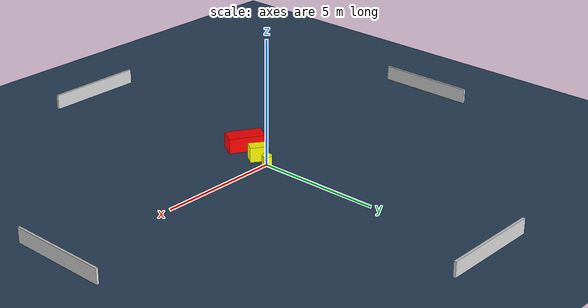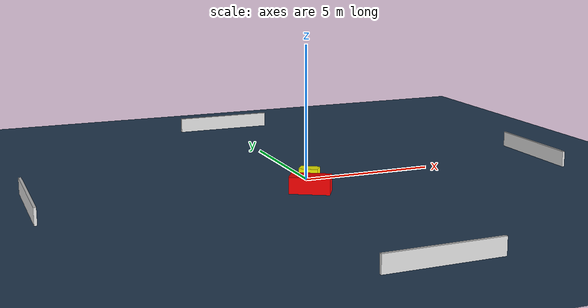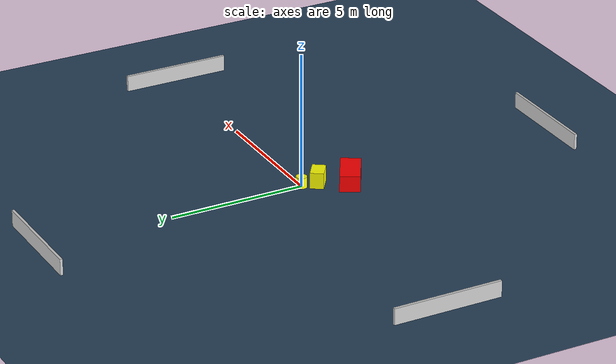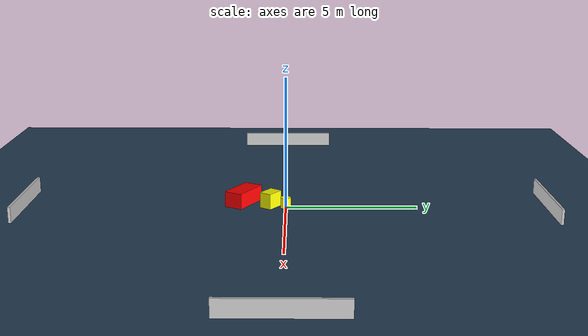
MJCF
<?xml version="1.0" ?>
<mujoco model="generated_environment">
  <option timestep="0.01" integrator="RK4" cone="elliptic"/>
  <default>
    <geom density="1"/>
  </default>
  <asset>
    <texture builtin="gradient" height="3072" name="skybox" rgb1="0.3 0.5 0.7" rgb2="0 0 0" type="skybox" width="512"/>
    <texture builtin="checker" height="300" name="groundplane" rgb1="0.2 0.3 0.4" rgb2="0.1 0.2 0.3" type="2d" width="300"/>
    <material name="groundplane" reflectance="0.2" texrepeat="5 5" texture="groundplane"/>
  </asset>
  <worldbody>
    <light dir="0 0 -1" directional="true" pos="0 0 1.5"/>
    <geom condim="3" friction="0.5 0.005 0.001" material="groundplane" name="floor" pos="0 0 0" size="0 0 0.05" type="plane"/>
    <body name="walls">
      <geom name="wall_1" condim="4" pos="-10.0 0.0 0.3" rgba="0.800000011920929 0.800000011920929 0.800000011920929 1.0" size="0.05 2.0 0.3" type="box"/>
      <geom name="wall_2" condim="4" pos="10.0 0.0 0.3" rgba="0.800000011920929 0.800000011920929 0.800000011920929 1.0" size="0.05 2.0 0.3" type="box"/>
      <geom name="wall_3" condim="4" pos="0.0 -10.0 0.3" rgba="0.800000011920929 0.800000011920929 0.800000011920929 1.0" size="2.0 0.05 0.3" type="box"/>
      <geom name="wall_4" condim="4" pos="0.0 10.0 0.3" rgba="0.800000011920929 0.800000011920929 0.800000011920929 1.0" size="2.0 0.05 0.3" type="box"/>
    </body>
    <body name="robot">
      <joint name="joint_x" type="slide" pos="0 0 0" axis="1 0 0"/>
      <joint name="joint_y" type="slide" pos="0 0 0" axis="0 1 0"/>
      <geom name="robot" type="cylinder" pos="0.0 0.0 0.2" size="0.2 0.2 0.0" mass="5.0" friction="1.0 0.005 0.0001" condim="4" rgba="1.0 1.0 0.0 1.0"/>
    </body>
    <body name="obstacle_1_movable">
      <geom name="obstacle_1_movable" condim="4" pos="-0.12503878439490926 -0.5806189667528852 0.3" euler="0 0 324.9754375332428" friction="0.0 0.005 0.001" rgba="1.0 1.0 0.0 1.0" size="0.35176609404827364 0.245045516842188 0.3" type="box" mass="0.1"/>
      <joint type="free"/>
    </body>
    <body name="obstacle_2_static">
      <geom name="obstacle_2_static" condim="4" pos="-0.5284919086409555 -1.6448103613993728 0.3" euler="0 0 59.93882140100423" friction="0.0 0.005 0.001" rgba="1.0 0.0 0.0 1.0" size="0.3653906869729683 0.7310184646533906 0.3" type="box"/>
    </body>
  </worldbody>
  <actuator>
    <motor name="actuator_x" joint="joint_x" gear="1" ctrlrange="-1 1"/>
    <motor name="actuator_y" joint="joint_y" gear="1" ctrlrange="-1 1"/>
  </actuator>
</mujoco>
